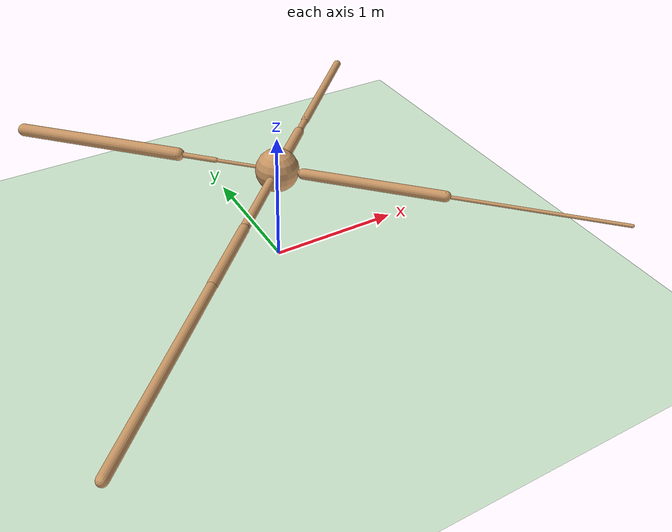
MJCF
<mujoco model="ant">
  <compiler angle="degree" coordinate="local" inertiafromgeom="true" />
  <option integrator="RK4" timestep="0.01" />
  <custom>
    <numeric data="0.0 0.0 0.55 1.0 0.0 0.0 0.0 0.0 1.0 0.0 -1.0 0.0 -1.0 0.0 1.0" name="init_qpos" />
  </custom>
  <default>
    <joint armature="1" damping="1" limited="true" />
    <geom conaffinity="0" condim="3" density="5.0" friction="1 0.5 0.5" margin="0.01" rgba="0.8 0.6 0.4 1" />
  </default>
  <asset>
    <texture builtin="gradient" height="100" rgb1="1 1 1" rgb2="0 0 0" type="skybox" width="100" />
    <texture builtin="flat" height="1278" mark="cross" markrgb="1 1 1" name="texgeom" random="0.01" rgb1="0.8 0.6 0.4" rgb2="0.8 0.6 0.4" type="cube" width="127" />
    <texture builtin="checker" height="100" name="texplane" rgb1="0 0 0" rgb2="0.8 0.8 0.8" type="2d" width="100" />
    <material name="MatPlane" reflectance="0.5" shininess="1" specular="1" texrepeat="60 60" texture="texplane" />
    <material name="geom" texture="texgeom" texuniform="true" />
  </asset>
  <worldbody>
    <light cutoff="100" diffuse="1 1 1" dir="-0 0 -1.3" directional="true" exponent="1" pos="0 0 1.3" specular=".1 .1 .1" />
    <geom conaffinity="1" condim="3" material="MatPlane" name="floor" pos="0 0 0" rgba="0.8 0.9 0.8 1" size="40 40 40" type="plane" />
    <body name="torso" pos="0 0 0.75">
      <camera name="track" mode="trackcom" pos="0 -11 5" xyaxes="1 0 0 0 0.5 1" />
      <geom name="torso_geom" pos="0 0 0" size="0.15695667266845703" type="sphere" />
      <joint armature="0" damping="0" limited="false" margin="0.01" name="root" pos="0 0 0" type="free" />
      <body name="front_left_leg" pos="0 0 0">
        <geom fromto="0 0 0 0.3833901882171631 0.3833901882171631 0" name="aux_1_geom" size="0.03889765590429306" type="capsule" />
        <body name="aux_1" pos="0.3833901882171631 0.3833901882171631 0">
          <joint axis="0 0 1" name="hip_1" pos="0.0 0.0 0.0" range="-30 30" type="hinge" />
          <geom fromto="0 0 0 0.13087615370750427 0.13087615370750427 0" name="left_leg_geom" size="0.025647426024079323" type="capsule" />
          <body name="left_leg_geom_aux" pos="0.13087615370750427 0.13087615370750427 0">
            <joint axis="-1 1 0" name="ankle_1" pos="0.0 0.0 0.0" range="30 70" type="hinge" />
            <geom fromto="0 0 0 0.7240843772888184 0.7240843772888184 0" name="left_ankle_geom" size="0.031119760125875473" type="capsule" />
          </body>
        </body>
      </body>
      <body name="front_right_leg" pos="0 0 0">
        <geom fromto="0 0 0 -0.32717642188072205 0.32717642188072205 0" name="aux_2_geom" size="0.012535080313682556" type="capsule" />
        <body name="aux_2" pos="-0.32717642188072205 0.32717642188072205 0">
          <joint axis="0 0 1" name="hip_2" pos="0.0 0.0 0.0" range="-30 30" type="hinge" />
          <geom fromto="0 0 0 -0.20640212297439575 0.20640212297439575 0" name="right_leg_geom" size="0.019394468516111374" type="capsule" />
          <body name="right_leg_geom_aux" pos="-0.20640212297439575 0.20640212297439575 0">
            <joint axis="1 1 0" name="ankle_2" pos="0.0 0.0 0.0" range="-70 -30" type="hinge" />
            <geom fromto="0 0 0 -0.8872976303100586 0.8872976303100586 0" name="right_ankle_geom" size="0.04753290116786957" type="capsule" />
          </body>
        </body>
      </body>
      <body name="back_leg" pos="0 0 0">
        <geom fromto="0 0 0 -0.5050525069236755 -0.5050525069236755 0" name="aux_3_geom" size="0.032593388110399246" type="capsule" />
        <body name="aux_3" pos="-0.5050525069236755 -0.5050525069236755 0">
          <joint axis="0 0 1" name="hip_3" pos="0.0 0.0 0.0" range="-30 30" type="hinge" />
          <geom fromto="0 0 0 -0.39969494938850403 -0.39969494938850403 0" name="back_leg_geom" size="0.03552594035863876" type="capsule" />
          <body name="back_leg_geom_aux" pos="-0.39969494938850403 -0.39969494938850403 0">
            <joint axis="-1 1 0" name="ankle_3" pos="0.0 0.0 0.0" range="-70 -30" type="hinge" />
            <geom fromto="0 0 0 -0.984442412853241 -0.984442412853241 0" name="third_ankle_geom" size="0.03347022086381912" type="capsule" />
          </body>
        </body>
      </body>
      <body name="right_back_leg" pos="0 0 0">
        <geom fromto="0 0 0 0.13709977269172668 -0.13709977269172668 0" name="aux_4_geom" size="0.02291557565331459" type="capsule" />
        <body name="aux_4" pos="0.13709977269172668 -0.13709977269172668 0">
          <joint axis="0 0 1" name="hip_4" pos="0.0 0.0 0.0" range="-30 30" type="hinge" />
          <geom fromto="0 0 0 0.7014644742012024 -0.7014644742012024 0" name="rightback_leg_geom" size="0.039108410477638245" type="capsule" />
          <body name="rightback_leg_geom_aux" pos="0.7014644742012024 -0.7014644742012024 0">
            <joint axis="1 1 0" name="ankle_4" pos="0.0 0.0 0.0" range="30 70" type="hinge" />
            <geom fromto="0 0 0 0.846410870552063 -0.846410870552063 0" name="fourth_ankle_geom" size="0.012888865545392036" type="capsule" />
          </body>
        </body>
      </body>
    </body>
  </worldbody>
  <actuator>
    <motor ctrllimited="true" ctrlrange="-1.0 1.0" joint="hip_4" gear="150" />
    <motor ctrllimited="true" ctrlrange="-1.0 1.0" joint="ankle_4" gear="150" />
    <motor ctrllimited="true" ctrlrange="-1.0 1.0" joint="hip_1" gear="150" />
    <motor ctrllimited="true" ctrlrange="-1.0 1.0" joint="ankle_1" gear="150" />
    <motor ctrllimited="true" ctrlrange="-1.0 1.0" joint="hip_2" gear="150" />
    <motor ctrllimited="true" ctrlrange="-1.0 1.0" joint="ankle_2" gear="150" />
    <motor ctrllimited="true" ctrlrange="-1.0 1.0" joint="hip_3" gear="150" />
    <motor ctrllimited="true" ctrlrange="-1.0 1.0" joint="ankle_3" gear="150" />
  </actuator>
</mujoco>
